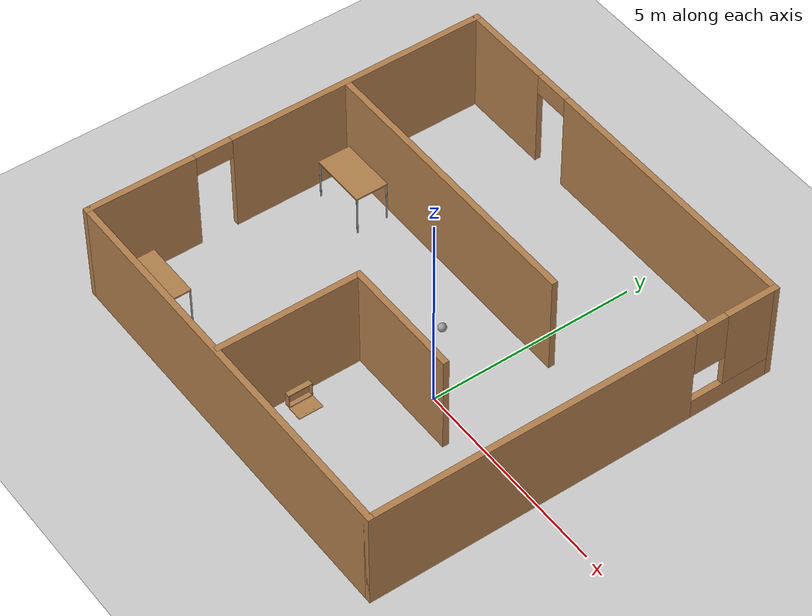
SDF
<sdf version="1.6">
 <world name="default">
  <plugin name="hellp" filename="libhellp.so"/>
  <light name="sun" type="directional">
   <pose>0 0 10 0 -0 0</pose>
   <diffuse>0.8 0.8 0.8 1</diffuse>
   <specular>0.1 0.1 0.1 1</specular>
   <attenuation>
    <range>1000</range>
    <constant>0.9</constant>
    <linear>0.01</linear>
    <quadratic>0.001</quadratic>
   </attenuation>
   <direction>-0.5 0.5 -1</direction>
  </light>
  <model name="ground_plane">
   <static>1</static>
   <link name="link">
    <collision name="collision">
     <geometry><plane><normal>0 0 1</normal><size>100 100</size></plane></geometry>
     <surface><friction><ode><mu>100</mu><mu2>50</mu2></ode></friction></surface>
    </collision>
    <visual name="visual">
     <cast_shadows>0</cast_shadows>
     <geometry><plane><normal>0 0 1</normal><size>100 100</size></plane></geometry>
     <material>
      <script><uri>file://media/materials/scripts/gazebo.material</uri><name>Gazebo/Grey</name></script>
     </material>
    </visual>
   </link>
  </model>
  <gravity>0 0 -9.8</gravity>
  <magnetic_field>6e-06 2.3e-05 -4.2e-05</magnetic_field>
  <atmosphere type="adiabatic"/>
  <physics name="default_physics" default="0" type="ode">
   <max_step_size>0.001</max_step_size>
   <real_time_factor>1</real_time_factor>
   <real_time_update_rate>1000</real_time_update_rate>
  </physics>
  <scene><ambient>0.4 0.4 0.4 1</ambient><background>0.7 0.7 0.7 1</background><shadows>1</shadows></scene>
  <spherical_coordinates>
   <surface_model>EARTH_WGS84</surface_model>
   <latitude_deg>0</latitude_deg>
   <longitude_deg>0</longitude_deg>
   <elevation>0</elevation>
   <heading_deg>0</heading_deg>
  </spherical_coordinates>
  <model name="new_building1">
   <pose>-1.56082 0.970307 0 0 -0 0</pose>
   <link name="Wall_0">
    <pose>-4.925 0 0 0 0 -1.5708</pose>
    <visual name="Wall_0_Visual_0">
     <pose>-1.77669 0 1.25 0 -0 0</pose>
     <geometry><box><size>6.44661 0.15 2.5</size></box></geometry>
     <material>
      <script><uri>file://media/materials/scripts/gazebo.material</uri><name>Gazebo/Wood</name></script>
      <ambient>1 1 1 1</ambient>
     </material>
    </visual>
    <collision name="Wall_0_Collision_0">
     <geometry><box><size>6.44661 0.15 2.5</size></box></geometry>
     <pose>-1.77669 0 1.25 0 -0 0</pose>
    </collision>
    <visual name="Wall_0_Visual_1">
     <pose>3.67331 0 1.25 0 -0 0</pose>
     <geometry><box><size>2.65339 0.15 2.5</size></box></geometry>
     <material>
      <script><uri>file://media/materials/scripts/gazebo.material</uri><name>Gazebo/Wood</name></script>
      <ambient>1 1 1 1</ambient>
     </material>
    </visual>
    <collision name="Wall_0_Collision_1">
     <geometry><box><size>2.65339 0.15 2.5</size></box></geometry>
     <pose>3.67331 0 1.25 0 -0 0</pose>
    </collision>
    <visual name="Wall_0_Visual_2">
     <pose>1.89661 0 2.25 0 -0 0</pose>
     <geometry><box><size>0.9 0.15 0.5</size></box></geometry>
     <material>
      <script><uri>file://media/materials/scripts/gazebo.material</uri><name>Gazebo/Wood</name></script>
      <ambient>1 1 1 1</ambient>
     </material>
    </visual>
    <collision name="Wall_0_Collision_2">
     <geometry><box><size>0.9 0.15 0.5</size></box></geometry>
     <pose>1.89661 0 2.25 0 -0 0</pose>
    </collision>
   </link>
   <link name="Wall_1">
    <collision name="Wall_1_Collision">
     <geometry><box><size>10 0.15 2.5</size></box></geometry>
     <pose>0 0 1.25 0 -0 0</pose>
    </collision>
    <visual name="Wall_1_Visual">
     <pose>0 0 1.25 0 -0 0</pose>
     <geometry><box><size>10 0.15 2.5</size></box></geometry>
     <material>
      <script><uri>file://media/materials/scripts/gazebo.material</uri><name>Gazebo/Wood</name></script>
      <ambient>1 1 1 1</ambient>
     </material>
    </visual>
    <pose>0 -4.925 0 0 -0 0</pose>
   </link>
   <link name="Wall_2">
    <pose>4.925 0 0 0 -0 1.5708</pose>
    <visual name="Wall_2_Visual_0">
     <pose>-1.05768 0 1.25 0 -0 0</pose>
     <geometry><box><size>7.88464 0.15 2.5</size></box></geometry>
     <material>
      <script><uri>file://media/materials/scripts/gazebo.material</uri><name>Gazebo/Wood</name></script>
      <ambient>1 1 1 1</ambient>
     </material>
    </visual>
    <collision name="Wall_2_Collision_0">
     <geometry><box><size>7.88464 0.15 2.5</size></box></geometry>
     <pose>-1.05768 0 1.25 0 -0 0</pose>
    </collision>
    <visual name="Wall_2_Visual_1">
     <pose>3.94232 0 0.25 0 -0 0</pose>
     <geometry><box><size>2.11536 0.15 0.5</size></box></geometry>
     <material>
      <script><uri>file://media/materials/scripts/gazebo.material</uri><name>Gazebo/Wood</name></script>
      <ambient>1 1 1 1</ambient>
     </material>
    </visual>
    <collision name="Wall_2_Collision_1">
     <geometry><box><size>2.11536 0.15 0.5</size></box></geometry>
     <pose>3.94232 0 0.25 0 -0 0</pose>
    </collision>
    <visual name="Wall_2_Visual_2">
     <pose>4.34232 0 1.5 0 -0 0</pose>
     <geometry><box><size>1.31536 0.15 2</size></box></geometry>
     <material>
      <script><uri>file://media/materials/scripts/gazebo.material</uri><name>Gazebo/Wood</name></script>
      <ambient>1 1 1 1</ambient>
     </material>
    </visual>
    <collision name="Wall_2_Collision_2">
     <geometry><box><size>1.31536 0.15 2</size></box></geometry>
     <pose>4.34232 0 1.5 0 -0 0</pose>
    </collision>
    <visual name="Wall_2_Visual_3">
     <pose>3.28464 0 1.9 0 -0 0</pose>
     <geometry><box><size>0.8 0.15 1.2</size></box></geometry>
     <material>
      <script><uri>file://media/materials/scripts/gazebo.material</uri><name>Gazebo/Wood</name></script>
      <ambient>1 1 1 1</ambient>
     </material>
    </visual>
    <collision name="Wall_2_Collision_3">
     <geometry><box><size>0.8 0.15 1.2</size></box></geometry>
     <pose>3.28464 0 1.9 0 -0 0</pose>
    </collision>
   </link>
   <link name="Wall_3">
    <pose>0 4.925 0 0 -0 3.14159</pose>
    <visual name="Wall_3_Visual_0">
     <pose>-1.61528 0 1.25 0 -0 0</pose>
     <geometry><box><size>6.76943 0.15 2.5</size></box></geometry>
     <material>
      <script><uri>file://media/materials/scripts/gazebo.material</uri><name>Gazebo/Wood</name></script>
      <ambient>1 1 1 1</ambient>
     </material>
    </visual>
    <collision name="Wall_3_Collision_0">
     <geometry><box><size>6.76943 0.15 2.5</size></box></geometry>
     <pose>-1.61528 0 1.25 0 -0 0</pose>
    </collision>
    <visual name="Wall_3_Visual_1">
     <pose>3.83472 0 1.25 0 -0 0</pose>
     <geometry><box><size>2.33056 0.15 2.5</size></box></geometry>
     <material>
      <script><uri>file://media/materials/scripts/gazebo.material</uri><name>Gazebo/Wood</name></script>
      <ambient>1 1 1 1</ambient>
     </material>
    </visual>
    <collision name="Wall_3_Collision_1">
     <geometry><box><size>2.33056 0.15 2.5</size></box></geometry>
     <pose>3.83472 0 1.25 0 -0 0</pose>
    </collision>
    <visual name="Wall_3_Visual_2">
     <pose>2.21943 0 2.25 0 -0 0</pose>
     <geometry><box><size>0.9 0.15 0.5</size></box></geometry>
     <material>
      <script><uri>file://media/materials/scripts/gazebo.material</uri><name>Gazebo/Wood</name></script>
      <ambient>1 1 1 1</ambient>
     </material>
    </visual>
    <collision name="Wall_3_Collision_2">
     <geometry><box><size>0.9 0.15 0.5</size></box></geometry>
     <pose>2.21943 0 2.25 0 -0 0</pose>
    </collision>
   </link>
   <link name="Wall_6">
    <collision name="Wall_6_Collision">
     <geometry><box><size>7.25 0.15 2.5</size></box></geometry>
     <pose>0 0 1.25 0 -0 0</pose>
    </collision>
    <visual name="Wall_6_Visual">
     <pose>0 0 1.25 0 -0 0</pose>
     <geometry><box><size>7.25 0.15 2.5</size></box></geometry>
     <material>
      <script><uri>file://media/materials/scripts/gazebo.material</uri><name>Gazebo/Wood</name></script>
      <ambient>1 1 1 1</ambient>
     </material>
    </visual>
    <pose>-1.35259 1.48046 0 0 -0 0</pose>
   </link>
   <link name="Wall_8">
    <collision name="Wall_8_Collision">
     <geometry><box><size>3.5 0.15 2.5</size></box></geometry>
     <pose>0 0 1.25 0 -0 0</pose>
    </collision>
    <visual name="Wall_8_Visual">
     <pose>0 0 1.25 0 -0 0</pose>
     <geometry><box><size>3.5 0.15 2.5</size></box></geometry>
     <material>
      <script><uri>file://media/materials/scripts/gazebo.material</uri><name>Gazebo/Wood</name></script>
      <ambient>1 1 1 1</ambient>
     </material>
    </visual>
    <pose>-0.230203 -3.18233 0 0 -0 1.5708</pose>
   </link>
   <link name="Wall_9">
    <collision name="Wall_9_Collision">
     <geometry><box><size>3 0.15 2.5</size></box></geometry>
     <pose>0 0 1.25 0 -0 0</pose>
    </collision>
    <visual name="Wall_9_Visual">
     <pose>0 0 1.25 0 -0 0</pose>
     <geometry><box><size>3 0.15 2.5</size></box></geometry>
     <material>
      <script><uri>file://media/materials/scripts/gazebo.material</uri><name>Gazebo/Wood</name></script>
      <ambient>1 1 1 1</ambient>
     </material>
    </visual>
    <pose>1.1948 -1.50733 0 0 -0 0</pose>
   </link>
   <static>1</static>
  </model>
  <model name="table">
   <static>0</static>
   <link name="link">
    <collision name="surface">
     <pose>0 0 1 0 -0 0</pose>
     <geometry><box><size>1.5 0.8 0.03</size></box></geometry>
     <surface><friction><ode><mu>0.6</mu><mu2>0.6</mu2></ode></friction></surface>
    </collision>
    <visual name="visual1">
     <pose>0 0 1 0 -0 0</pose>
     <geometry><box><size>1.4 0.8 0.04</size></box></geometry>
     <material>
      <script><uri>file://media/materials/scripts/gazebo.material</uri><name>Gazebo/Wood</name></script>
     </material>
    </visual>
    <collision name="front_left_leg">
     <pose>0.68 0.38 0.5 0 -0 0</pose>
     <geometry><cylinder><radius>0.02</radius><length>1</length></cylinder></geometry>
    </collision>
    <visual name="front_left_leg">
     <pose>0.68 0.38 0.5 0 -0 0</pose>
     <geometry><cylinder><radius>0.02</radius><length>1</length></cylinder></geometry>
     <material>
      <script><uri>file://media/materials/scripts/gazebo.material</uri><name>Gazebo/Grey</name></script>
     </material>
    </visual>
    <collision name="front_right_leg">
     <pose>0.68 -0.38 0.5 0 -0 0</pose>
     <geometry><cylinder><radius>0.02</radius><length>1</length></cylinder></geometry>
    </collision>
    <visual name="front_right_leg">
     <pose>0.68 -0.38 0.5 0 -0 0</pose>
     <geometry><cylinder><radius>0.02</radius><length>1</length></cylinder></geometry>
     <material>
      <script><uri>file://media/materials/scripts/gazebo.material</uri><name>Gazebo/Grey</name></script>
     </material>
    </visual>
    <collision name="back_right_leg">
     <pose>-0.68 -0.38 0.5 0 -0 0</pose>
     <geometry><cylinder><radius>0.02</radius><length>1</length></cylinder></geometry>
    </collision>
    <visual name="back_right_leg">
     <pose>-0.68 -0.38 0.5 0 -0 0</pose>
     <geometry><cylinder><radius>0.02</radius><length>1</length></cylinder></geometry>
     <material>
      <script><uri>file://media/materials/scripts/gazebo.material</uri><name>Gazebo/Grey</name></script>
     </material>
    </visual>
    <collision name="back_left_leg">
     <pose>-0.68 0.38 0.5 0 -0 0</pose>
     <geometry><cylinder><radius>0.02</radius><length>1</length></cylinder></geometry>
    </collision>
    <visual name="back_left_leg">
     <pose>-0.68 0.38 0.5 0 -0 0</pose>
     <geometry><cylinder><radius>0.02</radius><length>1</length></cylinder></geometry>
     <material>
      <script><uri>file://media/materials/scripts/gazebo.material</uri><name>Gazebo/Grey</name></script>
     </material>
    </visual>
    <inertial>
     <inertia><ixx>1</ixx><ixy>0</ixy><ixz>0</ixz><iyy>1</iyy><iyz>0</iyz><izz>1</izz></inertia>
     <mass>1</mass>
    </inertial>
   </link>
   <pose>-5.39929 1.82838 -1e-06 0 1e-06 0</pose>
  </model>
  <model name="table_0">
   <static>0</static>
   <link name="link">
    <collision name="surface">
     <pose>0 0 1 0 -0 0</pose>
     <geometry><box><size>1.5 0.8 0.03</size></box></geometry>
     <surface><friction><ode><mu>0.6</mu><mu2>0.6</mu2></ode></friction></surface>
    </collision>
    <visual name="visual1">
     <pose>0 0 1 0 -0 0</pose>
     <geometry><box><size>1.4 0.8 0.04</size></box></geometry>
     <material>
      <script><uri>file://media/materials/scripts/gazebo.material</uri><name>Gazebo/Wood</name></script>
     </material>
    </visual>
    <collision name="front_left_leg">
     <pose>0.68 0.38 0.5 0 -0 0</pose>
     <geometry><cylinder><radius>0.02</radius><length>1</length></cylinder></geometry>
    </collision>
    <visual name="front_left_leg">
     <pose>0.68 0.38 0.5 0 -0 0</pose>
     <geometry><cylinder><radius>0.02</radius><length>1</length></cylinder></geometry>
     <material>
      <script><uri>file://media/materials/scripts/gazebo.material</uri><name>Gazebo/Grey</name></script>
     </material>
    </visual>
    <collision name="front_right_leg">
     <pose>0.68 -0.38 0.5 0 -0 0</pose>
     <geometry><cylinder><radius>0.02</radius><length>1</length></cylinder></geometry>
    </collision>
    <visual name="front_right_leg">
     <pose>0.68 -0.38 0.5 0 -0 0</pose>
     <geometry><cylinder><radius>0.02</radius><length>1</length></cylinder></geometry>
     <material>
      <script><uri>file://media/materials/scripts/gazebo.material</uri><name>Gazebo/Grey</name></script>
     </material>
    </visual>
    <collision name="back_right_leg">
     <pose>-0.68 -0.38 0.5 0 -0 0</pose>
     <geometry><cylinder><radius>0.02</radius><length>1</length></cylinder></geometry>
    </collision>
    <visual name="back_right_leg">
     <pose>-0.68 -0.38 0.5 0 -0 0</pose>
     <geometry><cylinder><radius>0.02</radius><length>1</length></cylinder></geometry>
     <material>
      <script><uri>file://media/materials/scripts/gazebo.material</uri><name>Gazebo/Grey</name></script>
     </material>
    </visual>
    <collision name="back_left_leg">
     <pose>-0.68 0.38 0.5 0 -0 0</pose>
     <geometry><cylinder><radius>0.02</radius><length>1</length></cylinder></geometry>
    </collision>
    <visual name="back_left_leg">
     <pose>-0.68 0.38 0.5 0 -0 0</pose>
     <geometry><cylinder><radius>0.02</radius><length>1</length></cylinder></geometry>
     <material>
      <script><uri>file://media/materials/scripts/gazebo.material</uri><name>Gazebo/Grey</name></script>
     </material>
    </visual>
    <inertial>
     <inertia><ixx>1</ixx><ixy>0</ixy><ixz>0</ixz><iyy>1</iyy><iyz>0</iyz><izz>1</izz></inertia>
     <mass>1</mass>
    </inertial>
   </link>
   <pose>-5.28806 -3.18281 -1e-06 0 1e-06 0</pose>
  </model>
  <model name="wooden_case">
   <link name="base">
    <pose>0 0 0.024 0 -0 0</pose>
    <inertial>
     <pose>-0.022184 0 0.171592 0 -0 0</pose>
     <mass>3.96264</mass>
     <inertia>
      <ixx>0.213536</ixx>
      <ixy>0</ixy>
      <ixz>0.000779377</ixz>
      <iyy>0.0708943</iyy>
      <iyz>0</iyz>
      <izz>0.154604</izz>
     </inertia>
    </inertial>
    <collision name="collision_back">
     <pose>-0.053975 0 0.1778 0 -0 0</pose>
     <geometry><box><size>0.01905 0.5461 0.3175</size></box></geometry>
     <surface>
      <contact>
       <poissons_ratio>0.347</poissons_ratio>
       <elastic_modulus>8.8e+09</elastic_modulus>
       <ode><kp>100000</kp><kd>100</kd><max_vel>100</max_vel><min_depth>0.001</min_depth></ode>
      </contact>
      <friction>
       <torsional>
        <coefficient>1</coefficient>
        <use_patch_radius>0</use_patch_radius>
        <surface_radius>0.01</surface_radius>
       </torsional>
      </friction>
     </surface>
    </collision>
    <visual name="visual_back">
     <pose>-0.053975 0 0.1778 0 -0 0</pose>
     <geometry><box><size>0.01905 0.5461 0.3175</size></box></geometry>
     <material>
      <script><uri>file://media/materials/scripts/gazebo.material</uri><name>Gazebo/Wood</name></script>
     </material>
    </visual>
    <collision name="collision_bottom">
     <pose>0 0 0.009525 0 -0 0</pose>
     <geometry><box><size>0.127 0.5842 0.01905</size></box></geometry>
     <surface>
      <contact>
       <poissons_ratio>0.347</poissons_ratio>
       <elastic_modulus>8.8e+09</elastic_modulus>
       <ode><kp>100000</kp><kd>100</kd><max_vel>100</max_vel><min_depth>0.001</min_depth></ode>
      </contact>
      <friction>
       <torsional>
        <coefficient>1</coefficient>
        <use_patch_radius>0</use_patch_radius>
        <surface_radius>0.01</surface_radius>
       </torsional>
      </friction>
     </surface>
    </collision>
    <visual name="visual_bottom">
     <pose>0 0 0.009525 0 -0 0</pose>
     <geometry><box><size>0.127 0.5842 0.01905</size></box></geometry>
     <material>
      <script><uri>file://media/materials/scripts/gazebo.material</uri><name>Gazebo/Wood</name></script>
     </material>
    </visual>
    <collision name="collision_top">
     <pose>0 0 0.346075 0 -0 0</pose>
     <geometry><box><size>0.127 0.5842 0.01905</size></box></geometry>
     <surface>
      <contact>
       <poissons_ratio>0.347</poissons_ratio>
       <elastic_modulus>8.8e+09</elastic_modulus>
       <ode><kp>100000</kp><kd>100</kd><max_vel>100</max_vel><min_depth>0.001</min_depth></ode>
      </contact>
      <friction>
       <torsional>
        <coefficient>1</coefficient>
        <use_patch_radius>0</use_patch_radius>
        <surface_radius>0.01</surface_radius>
       </torsional>
      </friction>
     </surface>
    </collision>
    <visual name="visual_top">
     <pose>0 0 0.346075 0 -0 0</pose>
     <geometry><box><size>0.127 0.5842 0.01905</size></box></geometry>
     <material>
      <script><uri>file://media/materials/scripts/gazebo.material</uri><name>Gazebo/Wood</name></script>
     </material>
    </visual>
    <collision name="collision_left">
     <pose>0 -0.282575 0.1778 0 -0 0</pose>
     <geometry><box><size>0.127 0.01905 0.3175</size></box></geometry>
     <surface>
      <contact>
       <poissons_ratio>0.347</poissons_ratio>
       <elastic_modulus>8.8e+09</elastic_modulus>
       <ode><kp>100000</kp><kd>100</kd><max_vel>100</max_vel><min_depth>0.001</min_depth></ode>
      </contact>
      <friction>
       <torsional>
        <coefficient>1</coefficient>
        <use_patch_radius>0</use_patch_radius>
        <surface_radius>0.01</surface_radius>
       </torsional>
      </friction>
     </surface>
    </collision>
    <visual name="visual_left">
     <pose>0 -0.282575 0.1778 0 -0 0</pose>
     <geometry><box><size>0.127 0.01905 0.3175</size></box></geometry>
     <material>
      <script><uri>file://media/materials/scripts/gazebo.material</uri><name>Gazebo/Wood</name></script>
     </material>
    </visual>
    <collision name="collision_right">
     <pose>0 0.282575 0.1778 0 -0 0</pose>
     <geometry><box><size>0.127 0.01905 0.3175</size></box></geometry>
     <surface>
      <contact>
       <poissons_ratio>0.347</poissons_ratio>
       <elastic_modulus>8.8e+09</elastic_modulus>
       <ode><kp>100000</kp><kd>100</kd><max_vel>100</max_vel><min_depth>0.001</min_depth></ode>
      </contact>
      <friction>
       <torsional>
        <coefficient>1</coefficient>
        <use_patch_radius>0</use_patch_radius>
        <surface_radius>0.01</surface_radius>
       </torsional>
      </friction>
     </surface>
    </collision>
    <visual name="visual_right">
     <pose>0 0.282575 0.1778 0 -0 0</pose>
     <geometry><box><size>0.127 0.01905 0.3175</size></box></geometry>
     <material>
      <script><uri>file://media/materials/scripts/gazebo.material</uri><name>Gazebo/Wood</name></script>
     </material>
    </visual>
    <collision name="collision_block_left">
     <pose>0.0095 -0.2151 -0.012 0 -0 0</pose>
     <geometry><box><size>0.108 0.05 0.024</size></box></geometry>
     <surface>
      <contact>
       <poissons_ratio>0.347</poissons_ratio>
       <elastic_modulus>8.8e+09</elastic_modulus>
       <ode><kp>100000</kp><kd>100</kd><max_vel>100</max_vel><min_depth>0.001</min_depth></ode>
      </contact>
      <friction>
       <torsional>
        <coefficient>1</coefficient>
        <use_patch_radius>0</use_patch_radius>
        <surface_radius>0.01</surface_radius>
       </torsional>
      </friction>
     </surface>
    </collision>
    <visual name="visual_block_left">
     <pose>0.0095 -0.2151 -0.012 0 -0 0</pose>
     <geometry><box><size>0.108 0.05 0.024</size></box></geometry>
     <material>
      <script><uri>file://media/materials/scripts/gazebo.material</uri><name>Gazebo/Wood</name></script>
     </material>
    </visual>
    <collision name="collision_block_right">
     <pose>0.0095 0.2151 -0.012 0 -0 0</pose>
     <geometry><box><size>0.108 0.05 0.024</size></box></geometry>
     <surface>
      <contact>
       <poissons_ratio>0.347</poissons_ratio>
       <elastic_modulus>8.8e+09</elastic_modulus>
       <ode><kp>100000</kp><kd>100</kd><max_vel>100</max_vel><min_depth>0.001</min_depth></ode>
      </contact>
      <friction>
       <torsional>
        <coefficient>1</coefficient>
        <use_patch_radius>0</use_patch_radius>
        <surface_radius>0.01</surface_radius>
       </torsional>
      </friction>
     </surface>
    </collision>
    <visual name="visual_block_right">
     <pose>0.0095 0.2151 -0.012 0 -0 0</pose>
     <geometry><box><size>0.108 0.05 0.024</size></box></geometry>
     <material>
      <script><uri>file://media/materials/scripts/gazebo.material</uri><name>Gazebo/Wood</name></script>
     </material>
    </visual>
   </link>
   <link name="lid">
    <pose>0.243775 0 0.009525 0 -0 0</pose>
    <inertial>
     <mass>1.97874</mass>
     <inertia>
      <ixx>0.0563367</ixx>
      <ixy>0</ixy>
      <ixz>0</ixz>
      <iyy>0.020911</iyy>
      <iyz>0</iyz>
      <izz>0.0771281</izz>
     </inertia>
    </inertial>
    <collision name="collision">
     <geometry><box><size>0.3556 0.5842 0.01905</size></box></geometry>
     <surface>
      <contact>
       <poissons_ratio>0.347</poissons_ratio>
       <elastic_modulus>8.8e+09</elastic_modulus>
       <ode><kp>100000</kp><kd>100</kd><max_vel>100</max_vel><min_depth>0.001</min_depth></ode>
      </contact>
      <friction>
       <torsional>
        <coefficient>1</coefficient>
        <use_patch_radius>0</use_patch_radius>
        <surface_radius>0.01</surface_radius>
       </torsional>
      </friction>
     </surface>
    </collision>
    <visual name="visual">
     <geometry><box><size>0.3556 0.5842 0.01905</size></box></geometry>
     <material>
      <script><uri>file://media/materials/scripts/gazebo.material</uri><name>Gazebo/Wood</name></script>
     </material>
    </visual>
    <visual name="tee_nut_1">
     <pose>0.122 -0.216 0 0 -0 0</pose>
     <geometry><cylinder><radius>0.00635</radius><length>0.0192405</length></cylinder></geometry>
     <material>
      <script><uri>file://media/materials/scripts/gazebo.material</uri><name>Gazebo/Grey</name></script>
     </material>
    </visual>
    <visual name="tee_nut_2">
     <pose>0.122 -0.088 0 0 -0 0</pose>
     <geometry><cylinder><radius>0.00635</radius><length>0.0192405</length></cylinder></geometry>
     <material>
      <script><uri>file://media/materials/scripts/gazebo.material</uri><name>Gazebo/Grey</name></script>
     </material>
    </visual>
    <visual name="tee_nut_3">
     <pose>0.122 0.088 0 0 -0 0</pose>
     <geometry><cylinder><radius>0.00635</radius><length>0.0192405</length></cylinder></geometry>
     <material>
      <script><uri>file://media/materials/scripts/gazebo.material</uri><name>Gazebo/Grey</name></script>
     </material>
    </visual>
    <visual name="tee_nut_4">
     <pose>0.122 0.216 0 0 -0 0</pose>
     <geometry><cylinder><radius>0.00635</radius><length>0.0192405</length></cylinder></geometry>
     <material>
      <script><uri>file://media/materials/scripts/gazebo.material</uri><name>Gazebo/Grey</name></script>
     </material>
    </visual>
   </link>
   <joint name="lid_hinge" type="revolute">
    <pose>-0.1778 0 0.01905 0 -0 0</pose>
    <parent>base</parent>
    <child>lid</child>
    <axis>
     <xyz>0 1 0</xyz>
     <limit><upper>0.523599</upper><lower>-1.5708</lower></limit>
     <use_parent_model_frame>0</use_parent_model_frame>
     <dynamics><spring_reference>0</spring_reference><spring_stiffness>0</spring_stiffness></dynamics>
    </axis>
   </joint>
   <pose>-1.56464 -2.21992 -0.001057 0 -0.000427 0</pose>
  </model>
  <model name="white_ball">
   <link name="link">
    <inertial>
     <mass>1</mass>
     <inertia><ixx>0.1</ixx><ixy>0</ixy><ixz>0</ixz><iyy>0.1</iyy><iyz>0</iyz><izz>0.1</izz></inertia>
    </inertial>
    <visual name="visual">
     <geometry><sphere><radius>0.1</radius></sphere></geometry>
     <material>
      <script><name>Gazebo/Grey</name><uri>file://media/materials/scripts/gazebo.material</uri></script>
      <ambient>1 1 1 1</ambient>
      <diffuse>1 1 1 1</diffuse>
      <specular>1 1 1 1</specular>
      <emissive>1 1 1 1</emissive>
      <shader type="vertex"><normal_map>__default__</normal_map></shader>
     </material>
    </visual>
    <collision name="collision">
     <geometry><sphere><radius>0.1</radius></sphere></geometry>
     <surface>
      <friction>
       <ode><mu>1</mu><mu2>1</mu2><fdir1>0 0 0</fdir1><slip1>0</slip1><slip2>0</slip2></ode>
       <torsional>
        <coefficient>1</coefficient>
        <patch_radius>0</patch_radius>
        <surface_radius>0</surface_radius>
        <use_patch_radius>1</use_patch_radius>
        <ode><slip>0</slip></ode>
       </torsional>
      </friction>
      <bounce><restitution_coefficient>0</restitution_coefficient><threshold>1e+06</threshold></bounce>
      <contact>
       <collide_without_contact>0</collide_without_contact>
       <collide_without_contact_bitmask>1</collide_without_contact_bitmask>
       <collide_bitmask>1</collide_bitmask>
       <ode>
        <soft_cfm>0</soft_cfm>
        <soft_erp>0.2</soft_erp>
        <kp>1e+13</kp>
        <kd>1</kd>
        <max_vel>0.01</max_vel>
        <min_depth>0</min_depth>
       </ode>
       <bullet>
        <split_impulse>1</split_impulse>
        <split_impulse_penetration_threshold>-0.01</split_impulse_penetration_threshold>
        <soft_cfm>0</soft_cfm>
        <soft_erp>0.2</soft_erp>
        <kp>1e+13</kp>
        <kd>1</kd>
       </bullet>
      </contact>
     </surface>
    </collision>
   </link>
   <static>0</static>
   <pose>-1.39524 1.23771 0.1 0 -0 0</pose>
  </model>
 </world>
</sdf>
